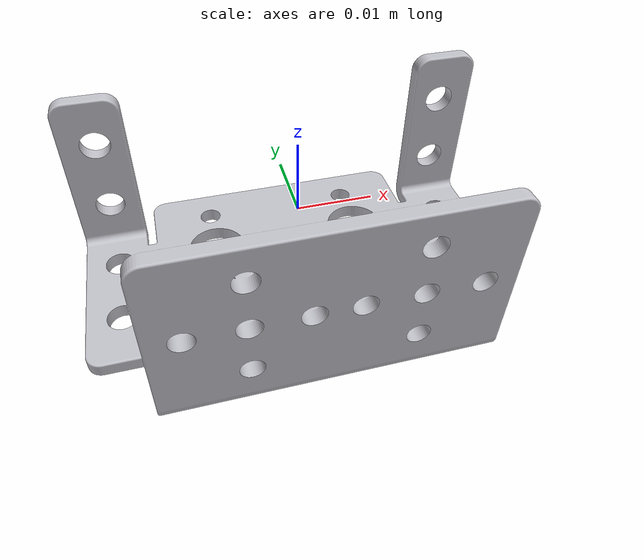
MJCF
<?xml version='1.0' encoding='utf-8'?>
<mujoco model="part_multi">
  <compiler angle="radian" meshdir="." autolimits="true"/>
  <visual>
    <global offwidth="1024" offheight="1024"/>
    <headlight ambient="0.55 0.55 0.55" diffuse="0.6 0.6 0.6" specular="0.2 0.2 0.2"/>
  </visual>
  <default>
    <default class="visual"><geom type="mesh" contype="0" conaffinity="0" group="2" density="0"/></default>
    <default class="collision"><geom type="mesh" group="3"/></default>
  </default>
  <asset>
    <mesh name="multi" file="多功能支架.STL" scale="0.001 0.001 0.001"/>
    <material name="bracket" rgba="0.75 0.75 0.78 1"/>
  </asset>
  <worldbody>
    <!-- source 多功能支架.STL: bbox min 0.000000 0.000000 0.000000 max 58.000000 37.000000 25.000000 mm, size 58.000000 37.000000 25.000000 mm -->
    <body name="multi">
      <geom name="multi_visual" mesh="multi" class="visual" material="bracket" pos="-0.029000 -0.018500 -0.012500"/>
      <geom name="multi_collision" mesh="multi" class="collision" pos="-0.029000 -0.018500 -0.012500" density="2700"/>
    </body>
  </worldbody>
</mujoco>
